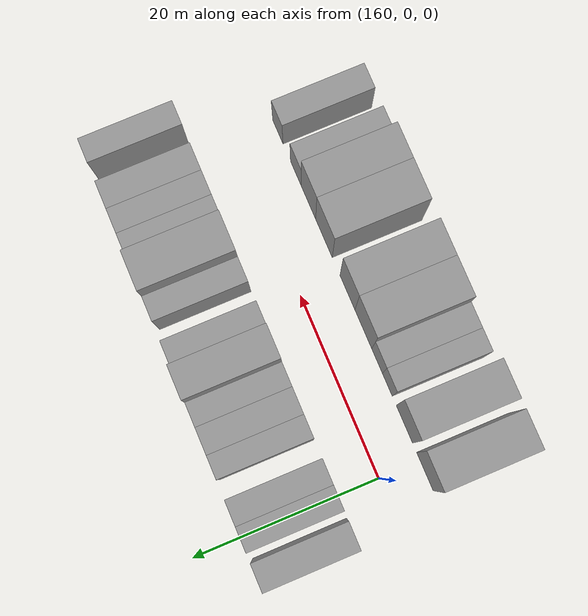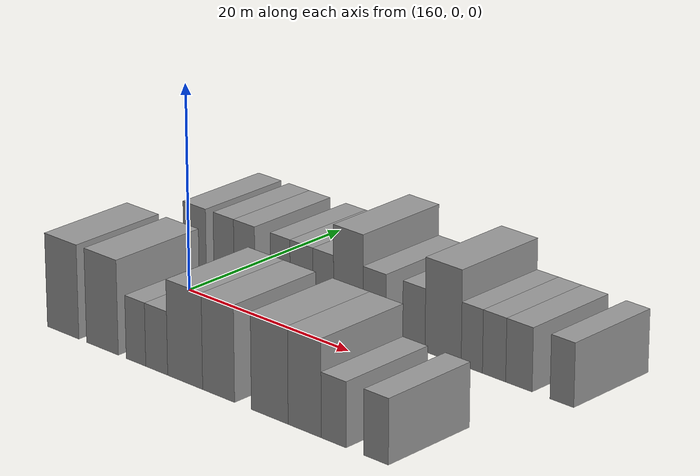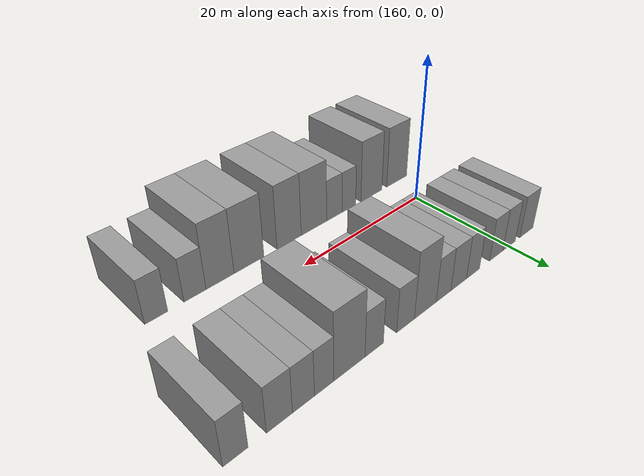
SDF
<sdf version="1.6">
 <world name="default">
  <model name="building_35">
   <static>1</static>
   <pose>156.1728 9.5000 0 0.000000 0.000000 1.570796</pose>
   <link name="link">
    <pose>0 0 3.00 0 0 0</pose>
    <collision name="collision"><geometry><box><size>10.0000 2.9697 6.0000</size></box></geometry></collision>
    <visual name="visual">
     <cast_shadows>0</cast_shadows>
     <geometry><box><size>10.0000 2.9697 6.0000</size></box></geometry>
     <material>
      <script>
       <uri>model://grey_wall/materials/scripts</uri>
       <uri>model://grey_wall/materials/textures</uri>
       <name>vrc/grey_wall</name>
      </script>
     </material>
    </visual>
   </link>
  </model>
  <model name="building_36">
   <static>1</static>
   <pose>159.9766 9.5000 0 0.000000 0.000000 1.570796</pose>
   <link name="link">
    <pose>0 0 3.00 0 0 0</pose>
    <collision name="collision"><geometry><box><size>10.0000 2.6379 6.0000</size></box></geometry></collision>
    <visual name="visual">
     <cast_shadows>0</cast_shadows>
     <geometry><box><size>10.0000 2.6379 6.0000</size></box></geometry>
     <material>
      <script>
       <uri>model://grey_wall/materials/scripts</uri>
       <uri>model://grey_wall/materials/textures</uri>
       <name>vrc/grey_wall</name>
      </script>
     </material>
    </visual>
   </link>
  </model>
  <model name="building_37">
   <static>1</static>
   <pose>162.6449 9.5000 0 0.000000 0.000000 1.570796</pose>
   <link name="link">
    <pose>0 0 3.00 0 0 0</pose>
    <collision name="collision"><geometry><box><size>10.0000 2.6988 6.0000</size></box></geometry></collision>
    <visual name="visual">
     <cast_shadows>0</cast_shadows>
     <geometry><box><size>10.0000 2.6988 6.0000</size></box></geometry>
     <material>
      <script>
       <uri>model://grey_wall/materials/scripts</uri>
       <uri>model://grey_wall/materials/textures</uri>
       <name>vrc/grey_wall</name>
      </script>
     </material>
    </visual>
   </link>
  </model>
  <model name="building_38">
   <static>1</static>
   <pose>167.2422 9.5000 0 0.000000 0.000000 1.570796</pose>
   <link name="link">
    <pose>0 0 3.00 0 0 0</pose>
    <collision name="collision"><geometry><box><size>10.0000 2.4957 6.0000</size></box></geometry></collision>
    <visual name="visual">
     <cast_shadows>0</cast_shadows>
     <geometry><box><size>10.0000 2.4957 6.0000</size></box></geometry>
     <material>
      <script>
       <uri>model://grey_wall/materials/scripts</uri>
       <uri>model://grey_wall/materials/textures</uri>
       <name>vrc/grey_wall</name>
      </script>
     </material>
    </visual>
   </link>
  </model>
  <model name="building_39">
   <static>1</static>
   <pose>169.9129 9.5000 0 0.000000 0.000000 1.570796</pose>
   <link name="link">
    <pose>0 0 3.00 0 0 0</pose>
    <collision name="collision"><geometry><box><size>10.0000 2.8458 6.0000</size></box></geometry></collision>
    <visual name="visual">
     <cast_shadows>0</cast_shadows>
     <geometry><box><size>10.0000 2.8458 6.0000</size></box></geometry>
     <material>
      <script>
       <uri>model://grey_wall/materials/scripts</uri>
       <uri>model://grey_wall/materials/textures</uri>
       <name>vrc/grey_wall</name>
      </script>
     </material>
    </visual>
   </link>
  </model>
  <model name="building_40">
   <static>1</static>
   <pose>172.6208 9.5000 0 0.000000 0.000000 1.570796</pose>
   <link name="link">
    <pose>0 0 3.00 0 0 0</pose>
    <collision name="collision"><geometry><box><size>10.0000 2.5699 6.0000</size></box></geometry></collision>
    <visual name="visual">
     <cast_shadows>0</cast_shadows>
     <geometry><box><size>10.0000 2.5699 6.0000</size></box></geometry>
     <material>
      <script>
       <uri>model://grey_wall/materials/scripts</uri>
       <uri>model://grey_wall/materials/textures</uri>
       <name>vrc/grey_wall</name>
      </script>
     </material>
    </visual>
   </link>
  </model>
  <model name="building_41">
   <static>1</static>
   <pose>175.7122 9.5000 0 0.000000 0.000000 1.570796</pose>
   <link name="link">
    <pose>0 0 4.50 0 0 0</pose>
    <collision name="collision"><geometry><box><size>10.0000 3.6127 9.0000</size></box></geometry></collision>
    <visual name="visual">
     <cast_shadows>0</cast_shadows>
     <geometry><box><size>10.0000 3.6127 9.0000</size></box></geometry>
     <material>
      <script>
       <uri>model://grey_wall/materials/scripts</uri>
       <uri>model://grey_wall/materials/textures</uri>
       <name>vrc/grey_wall</name>
      </script>
     </material>
    </visual>
   </link>
  </model>
  <model name="building_42">
   <static>1</static>
   <pose>178.9154 9.5000 0 0.000000 0.000000 1.570796</pose>
   <link name="link">
    <pose>0 0 3.00 0 0 0</pose>
    <collision name="collision"><geometry><box><size>10.0000 2.7937 6.0000</size></box></geometry></collision>
    <visual name="visual">
     <cast_shadows>0</cast_shadows>
     <geometry><box><size>10.0000 2.7937 6.0000</size></box></geometry>
     <material>
      <script>
       <uri>model://grey_wall/materials/scripts</uri>
       <uri>model://grey_wall/materials/textures</uri>
       <name>vrc/grey_wall</name>
      </script>
     </material>
    </visual>
   </link>
  </model>
  <model name="building_43">
   <static>1</static>
   <pose>183.6461 9.5000 0 0.000000 0.000000 1.570796</pose>
   <link name="link">
    <pose>0 0 3.00 0 0 0</pose>
    <collision name="collision"><geometry><box><size>10.0000 2.6677 6.0000</size></box></geometry></collision>
    <visual name="visual">
     <cast_shadows>0</cast_shadows>
     <geometry><box><size>10.0000 2.6677 6.0000</size></box></geometry>
     <material>
      <script>
       <uri>model://grey_wall/materials/scripts</uri>
       <uri>model://grey_wall/materials/textures</uri>
       <name>vrc/grey_wall</name>
      </script>
     </material>
    </visual>
   </link>
  </model>
  <model name="building_44">
   <static>1</static>
   <pose>187.0992 9.5000 0 0.000000 0.000000 1.570796</pose>
   <link name="link">
    <pose>0 0 4.50 0 0 0</pose>
    <collision name="collision"><geometry><box><size>10.0000 4.2384 9.0000</size></box></geometry></collision>
    <visual name="visual">
     <cast_shadows>0</cast_shadows>
     <geometry><box><size>10.0000 4.2384 9.0000</size></box></geometry>
     <material>
      <script>
       <uri>model://grey_wall/materials/scripts</uri>
       <uri>model://grey_wall/materials/textures</uri>
       <name>vrc/grey_wall</name>
      </script>
     </material>
    </visual>
   </link>
  </model>
  <model name="building_45">
   <static>1</static>
   <pose>190.4469 9.5000 0 0.000000 0.000000 1.570796</pose>
   <link name="link">
    <pose>0 0 3.00 0 0 0</pose>
    <collision name="collision"><geometry><box><size>10.0000 2.4572 6.0000</size></box></geometry></collision>
    <visual name="visual">
     <cast_shadows>0</cast_shadows>
     <geometry><box><size>10.0000 2.4572 6.0000</size></box></geometry>
     <material>
      <script>
       <uri>model://grey_wall/materials/scripts</uri>
       <uri>model://grey_wall/materials/textures</uri>
       <name>vrc/grey_wall</name>
      </script>
     </material>
    </visual>
   </link>
  </model>
  <model name="building_46">
   <static>1</static>
   <pose>193.0088 9.5000 0 0.000000 0.000000 1.570796</pose>
   <link name="link">
    <pose>0 0 3.00 0 0 0</pose>
    <collision name="collision"><geometry><box><size>10.0000 2.6666 6.0000</size></box></geometry></collision>
    <visual name="visual">
     <cast_shadows>0</cast_shadows>
     <geometry><box><size>10.0000 2.6666 6.0000</size></box></geometry>
     <material>
      <script>
       <uri>model://grey_wall/materials/scripts</uri>
       <uri>model://grey_wall/materials/textures</uri>
       <name>vrc/grey_wall</name>
      </script>
     </material>
    </visual>
   </link>
  </model>
  <model name="building_47">
   <static>1</static>
   <pose>195.8379 9.5000 0 0.000000 0.000000 1.570796</pose>
   <link name="link">
    <pose>0 0 3.00 0 0 0</pose>
    <collision name="collision"><geometry><box><size>10.0000 2.9915 6.0000</size></box></geometry></collision>
    <visual name="visual">
     <cast_shadows>0</cast_shadows>
     <geometry><box><size>10.0000 2.9915 6.0000</size></box></geometry>
     <material>
      <script>
       <uri>model://grey_wall/materials/scripts</uri>
       <uri>model://grey_wall/materials/textures</uri>
       <name>vrc/grey_wall</name>
      </script>
     </material>
    </visual>
   </link>
  </model>
  <model name="building_48">
   <static>1</static>
   <pose>200.6542 9.5000 0 0.000000 0.000000 1.570796</pose>
   <link name="link">
    <pose>0 0 3.00 0 0 0</pose>
    <collision name="collision"><geometry><box><size>10.0000 2.6412 6.0000</size></box></geometry></collision>
    <visual name="visual">
     <cast_shadows>0</cast_shadows>
     <geometry><box><size>10.0000 2.6412 6.0000</size></box></geometry>
     <material>
      <script>
       <uri>model://grey_wall/materials/scripts</uri>
       <uri>model://grey_wall/materials/textures</uri>
       <name>vrc/grey_wall</name>
      </script>
     </material>
    </visual>
   </link>
  </model>
  <model name="building_86">
   <static>1</static>
   <pose>158.8288 -9.5000 0 0.000000 0.000000 1.570796</pose>
   <link name="link">
    <pose>0 0 4.50 0 0 0</pose>
    <collision name="collision"><geometry><box><size>10.0000 4.1093 9.0000</size></box></geometry></collision>
    <visual name="visual">
     <cast_shadows>0</cast_shadows>
     <geometry><box><size>10.0000 4.1093 9.0000</size></box></geometry>
     <material>
      <script>
       <uri>model://grey_wall/materials/scripts</uri>
       <uri>model://grey_wall/materials/textures</uri>
       <name>vrc/grey_wall</name>
      </script>
     </material>
    </visual>
   </link>
  </model>
  <model name="building_87">
   <static>1</static>
   <pose>163.9238 -9.5000 0 0.000000 0.000000 1.570796</pose>
   <link name="link">
    <pose>0 0 4.50 0 0 0</pose>
    <collision name="collision"><geometry><box><size>10.0000 4.0807 9.0000</size></box></geometry></collision>
    <visual name="visual">
     <cast_shadows>0</cast_shadows>
     <geometry><box><size>10.0000 4.0807 9.0000</size></box></geometry>
     <material>
      <script>
       <uri>model://grey_wall/materials/scripts</uri>
       <uri>model://grey_wall/materials/textures</uri>
       <name>vrc/grey_wall</name>
      </script>
     </material>
    </visual>
   </link>
  </model>
  <model name="building_88">
   <static>1</static>
   <pose>168.2005 -9.5000 0 0.000000 0.000000 1.570796</pose>
   <link name="link">
    <pose>0 0 3.00 0 0 0</pose>
    <collision name="collision"><geometry><box><size>10.0000 2.4728 6.0000</size></box></geometry></collision>
    <visual name="visual">
     <cast_shadows>0</cast_shadows>
     <geometry><box><size>10.0000 2.4728 6.0000</size></box></geometry>
     <material>
      <script>
       <uri>model://grey_wall/materials/scripts</uri>
       <uri>model://grey_wall/materials/textures</uri>
       <name>vrc/grey_wall</name>
      </script>
     </material>
    </visual>
   </link>
  </model>
  <model name="building_89">
   <static>1</static>
   <pose>170.8061 -9.5000 0 0.000000 0.000000 1.570796</pose>
   <link name="link">
    <pose>0 0 3.00 0 0 0</pose>
    <collision name="collision"><geometry><box><size>10.0000 2.7384 6.0000</size></box></geometry></collision>
    <visual name="visual">
     <cast_shadows>0</cast_shadows>
     <geometry><box><size>10.0000 2.7384 6.0000</size></box></geometry>
     <material>
      <script>
       <uri>model://grey_wall/materials/scripts</uri>
       <uri>model://grey_wall/materials/textures</uri>
       <name>vrc/grey_wall</name>
      </script>
     </material>
    </visual>
   </link>
  </model>
  <model name="building_90">
   <static>1</static>
   <pose>174.3310 -9.5000 0 0.000000 0.000000 1.570796</pose>
   <link name="link">
    <pose>0 0 4.50 0 0 0</pose>
    <collision name="collision"><geometry><box><size>10.0000 4.3114 9.0000</size></box></geometry></collision>
    <visual name="visual">
     <cast_shadows>0</cast_shadows>
     <geometry><box><size>10.0000 4.3114 9.0000</size></box></geometry>
     <material>
      <script>
       <uri>model://grey_wall/materials/scripts</uri>
       <uri>model://grey_wall/materials/textures</uri>
       <name>vrc/grey_wall</name>
      </script>
     </material>
    </visual>
   </link>
  </model>
  <model name="building_91">
   <static>1</static>
   <pose>178.4194 -9.5000 0 0.000000 0.000000 1.570796</pose>
   <link name="link">
    <pose>0 0 4.50 0 0 0</pose>
    <collision name="collision"><geometry><box><size>10.0000 3.8654 9.0000</size></box></geometry></collision>
    <visual name="visual">
     <cast_shadows>0</cast_shadows>
     <geometry><box><size>10.0000 3.8654 9.0000</size></box></geometry>
     <material>
      <script>
       <uri>model://grey_wall/materials/scripts</uri>
       <uri>model://grey_wall/materials/textures</uri>
       <name>vrc/grey_wall</name>
      </script>
     </material>
    </visual>
   </link>
  </model>
  <model name="building_92">
   <static>1</static>
   <pose>184.5234 -9.5000 0 0.000000 0.000000 1.570796</pose>
   <link name="link">
    <pose>0 0 4.50 0 0 0</pose>
    <collision name="collision"><geometry><box><size>10.0000 4.3425 9.0000</size></box></geometry></collision>
    <visual name="visual">
     <cast_shadows>0</cast_shadows>
     <geometry><box><size>10.0000 4.3425 9.0000</size></box></geometry>
     <material>
      <script>
       <uri>model://grey_wall/materials/scripts</uri>
       <uri>model://grey_wall/materials/textures</uri>
       <name>vrc/grey_wall</name>
      </script>
     </material>
    </visual>
   </link>
  </model>
  <model name="building_93">
   <static>1</static>
   <pose>188.6107 -9.5000 0 0.000000 0.000000 1.570796</pose>
   <link name="link">
    <pose>0 0 4.50 0 0 0</pose>
    <collision name="collision"><geometry><box><size>10.0000 3.8320 9.0000</size></box></geometry></collision>
    <visual name="visual">
     <cast_shadows>0</cast_shadows>
     <geometry><box><size>10.0000 3.8320 9.0000</size></box></geometry>
     <material>
      <script>
       <uri>model://grey_wall/materials/scripts</uri>
       <uri>model://grey_wall/materials/textures</uri>
       <name>vrc/grey_wall</name>
      </script>
     </material>
    </visual>
   </link>
  </model>
  <model name="building_94">
   <static>1</static>
   <pose>191.9510 -9.5000 0 0.000000 0.000000 1.570796</pose>
   <link name="link">
    <pose>0 0 3.00 0 0 0</pose>
    <collision name="collision"><geometry><box><size>10.0000 2.8488 6.0000</size></box></geometry></collision>
    <visual name="visual">
     <cast_shadows>0</cast_shadows>
     <geometry><box><size>10.0000 2.8488 6.0000</size></box></geometry>
     <material>
      <script>
       <uri>model://grey_wall/materials/scripts</uri>
       <uri>model://grey_wall/materials/textures</uri>
       <name>vrc/grey_wall</name>
      </script>
     </material>
    </visual>
   </link>
  </model>
  <model name="building_95">
   <static>1</static>
   <pose>196.7569 -9.5000 0 0.000000 0.000000 1.570796</pose>
   <link name="link">
    <pose>0 0 3.00 0 0 0</pose>
    <collision name="collision"><geometry><box><size>10.0000 2.7631 6.0000</size></box></geometry></collision>
    <visual name="visual">
     <cast_shadows>0</cast_shadows>
     <geometry><box><size>10.0000 2.7631 6.0000</size></box></geometry>
     <material>
      <script>
       <uri>model://grey_wall/materials/scripts</uri>
       <uri>model://grey_wall/materials/textures</uri>
       <name>vrc/grey_wall</name>
      </script>
     </material>
    </visual>
   </link>
  </model>
 </world>
</sdf>
